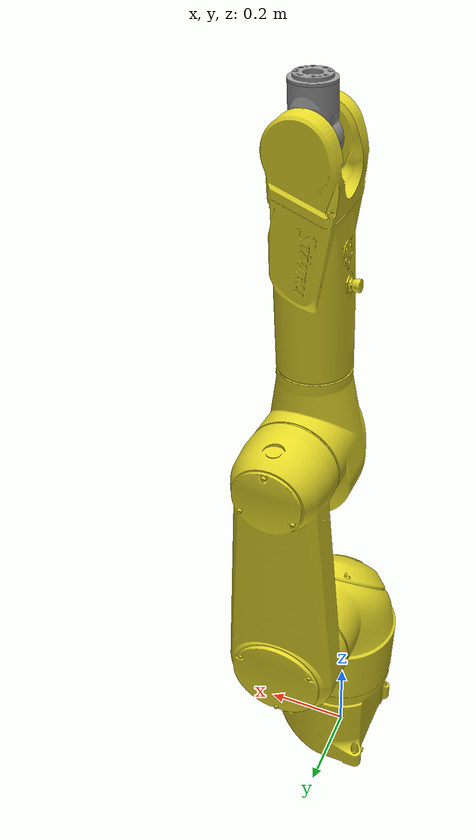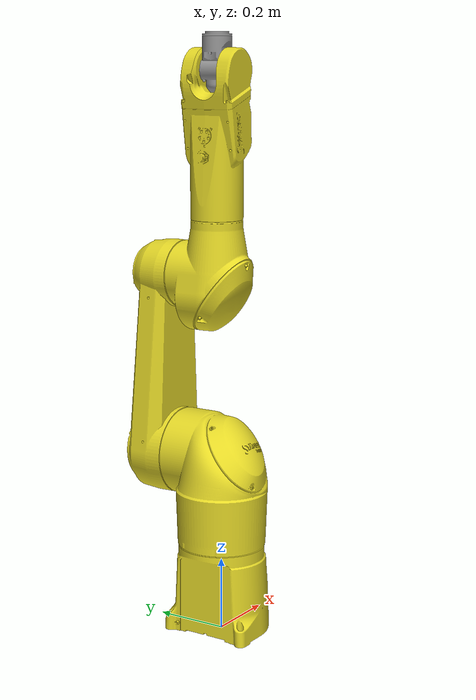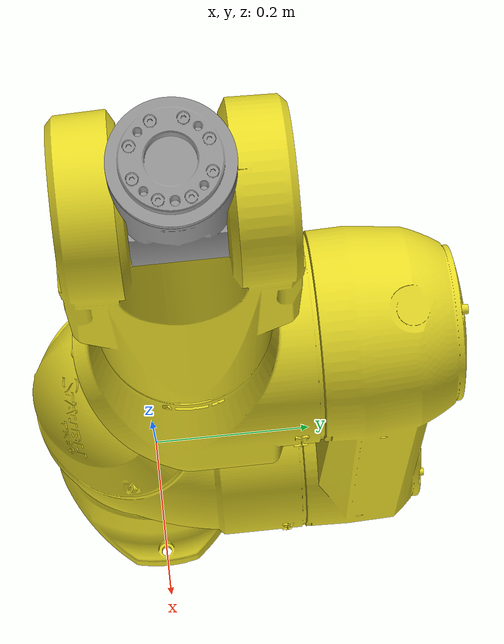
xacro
<?xml version="1.0" ?>
<robot name="staubli_tx90l_gazebo" xmlns:xacro="http://wiki.ros.org/xacro">
  <!-- TX90L -->
  <xacro:include filename="$(find staubli_tx90_gazebo)/urdf/tx90l_macro.xacro"/>

  <xacro:staubli_tx90l_robot prefix=""/>

  <!-- Fix robot to Gazebo world -->
  <link name="world"/>
  <joint name="world-base_link-fixed" type="fixed">
    <parent link="world"/>
    <child link="base_link"/>
    <origin xyz="0.0 0.0 0.0" rpy="0.0 0.0 0.0" />
  </joint>
</robot>

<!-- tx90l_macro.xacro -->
<robot xmlns:xacro="http://wiki.ros.org/xacro">
<xacro:include filename="$(find staubli_tx90_support)/urdf/tx90l_macro.xacro"/>
<xacro:macro name="staubli_tx90l_robot" params="prefix">

  <!-- get URDF description of Staubli TX90L model -->
  <xacro:staubli_tx90l prefix="${prefix}" />

  <!-- transmission list -->
  <transmission name="${prefix}tran1">
    <robotNamespace>/${prefix}</robotNamespace>
    <type>transmission_interface/SimpleTransmission</type>
    <joint name="${prefix}joint_1">
      <hardwareInterface>PositionJointInterface</hardwareInterface>
    </joint>
    <actuator name="${prefix}motor1">
      <mechanicalReduction>1</mechanicalReduction>
    </actuator>
  </transmission>
  <transmission name="${prefix}tran2">
    <robotNamespace>/${prefix}</robotNamespace>
    <type>transmission_interface/SimpleTransmission</type>
    <joint name="${prefix}joint_2">
      <hardwareInterface>PositionJointInterface</hardwareInterface>
    </joint>
    <actuator name="${prefix}motor2">
      <mechanicalReduction>1</mechanicalReduction>
    </actuator>
  </transmission>
  <transmission name="${prefix}tran3">
    <robotNamespace>/${prefix}</robotNamespace>
    <type>transmission_interface/SimpleTransmission</type>
    <joint name="${prefix}joint_3">
      <hardwareInterface>PositionJointInterface</hardwareInterface>
    </joint>
    <actuator name="${prefix}motor3">
      <mechanicalReduction>1</mechanicalReduction>
    </actuator>
  </transmission>
  <transmission name="${prefix}tran4">
    <robotNamespace>/${prefix}</robotNamespace>
    <type>transmission_interface/SimpleTransmission</type>
    <joint name="${prefix}joint_4">
      <hardwareInterface>PositionJointInterface</hardwareInterface>
    </joint>
    <actuator name="${prefix}motor4">
      <mechanicalReduction>1</mechanicalReduction>
    </actuator>
  </transmission>
  <transmission name="${prefix}tran5">
    <robotNamespace>/${prefix}</robotNamespace>
    <type>transmission_interface/SimpleTransmission</type>
    <joint name="${prefix}joint_5">
      <hardwareInterface>PositionJointInterface</hardwareInterface>
    </joint>
    <actuator name="${prefix}motor5">
      <mechanicalReduction>1</mechanicalReduction>
    </actuator>
  </transmission>
  <transmission name="${prefix}tran6">
    <robotNamespace>/${prefix}</robotNamespace>
    <type>transmission_interface/SimpleTransmission</type>
    <joint name="${prefix}joint_6">
      <hardwareInterface>PositionJointInterface</hardwareInterface>
    </joint>
    <actuator name="${prefix}motor6">
      <mechanicalReduction>1</mechanicalReduction>
    </actuator>
  </transmission>
  <!-- end of transmission list -->

  <!-- Gazebo-specific link properties -->
  <gazebo reference="${prefix}base_link">
    <material>Gazebo/Yellow</material>
    <turnGravityOff>true</turnGravityOff>
  </gazebo>
  <gazebo reference="${prefix}link_1">
    <material>Gazebo/Yellow</material>
    <turnGravityOff>true</turnGravityOff>
  </gazebo>
  <gazebo reference="${prefix}link_2">
    <material>Gazebo/Yellow</material>
    <turnGravityOff>true</turnGravityOff>
  </gazebo>
  <gazebo reference="${prefix}link_3">
    <material>Gazebo/Yellow</material>
    <turnGravityOff>true</turnGravityOff>
  </gazebo>
  <gazebo reference="${prefix}link_4">
    <material>Gazebo/Yellow</material>
    <turnGravityOff>true</turnGravityOff>
  </gazebo>
  <gazebo reference="${prefix}link_5">
    <material>Gazebo/Grey</material>
    <turnGravityOff>true</turnGravityOff>
  </gazebo>
  <gazebo reference="${prefix}link_6">
    <material>Gazebo/Grey</material>
    <turnGravityOff>true</turnGravityOff>
  </gazebo>

  <!-- ros_control plugin -->
  <gazebo>
    <plugin name="gazebo_ros_control" filename="libgazebo_ros_control.so">
      <robotNamespace>/${prefix}</robotNamespace>
      <robotSimType>gazebo_ros_control/DefaultRobotHWSim</robotSimType>
    </plugin>
  </gazebo>

  </xacro:macro>
</robot>

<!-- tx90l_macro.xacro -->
<robot xmlns:xacro="http://wiki.ros.org/xacro">
  <xacro:include filename="$(find staubli_resources)/urdf/common_materials.xacro"/>

  <xacro:macro name="staubli_tx90l" params="prefix">
    <!-- links: main serial chain -->
    <link name="${prefix}base_link">
      <visual>
        <origin xyz="0 0 0" rpy="0 0 0"/>
        <geometry>
          <mesh filename="package://staubli_tx90_support/meshes/tx90/visual/base_link.stl"/>
        </geometry>
        <xacro:material_staubli_ral_melon_yellow />
      </visual>
      <collision>
        <origin xyz="0 0 0" rpy="0 0 0"/>
        <geometry>
          <mesh filename="package://staubli_tx90_support/meshes/tx90/collision/base_link.stl"/>
        </geometry>
      </collision>
      <inertial>
          <mass value="10.733459"/>
          <origin xyz="0.014288 0.000001 0.122264" rpy="0.0 0.0 0.0"/>
          <inertia ixx="0.096590" ixy="-0.000005" ixz="-0.003803"
                                  iyy="0.087591"  iyz="-0.000001"
                                                  izz="0.081632"/>
      </inertial>
    </link>
    <link name="${prefix}link_1">
      <visual>
        <origin xyz="0 0 0" rpy="0 0 0"/>
        <geometry>
          <mesh filename="package://staubli_tx90_support/meshes/tx90/visual/link_1.stl"/>
        </geometry>
        <xacro:material_staubli_ral_melon_yellow />
      </visual>
      <collision>
        <origin xyz="0 0 0" rpy="0 0 0"/>
        <geometry>
          <mesh filename="package://staubli_tx90_support/meshes/tx90/collision/link_1.stl"/>
        </geometry>
      </collision>
      <inertial>
          <mass value="16.934564"/>
          <origin xyz="0.019143 0.024764 -0.064596" rpy="0.0 0.0 0.0"/>
          <inertia ixx="0.222318" ixy="0.016499" ixz="0.023794"
                                  iyy="0.208959" iyz="0.031663"
                                                 izz="0.157081"/>
      </inertial>
    </link>
    <link name="${prefix}link_2">
      <visual>
        <origin xyz="0 0 0" rpy="0 0 0"/>
        <geometry>
          <mesh filename="package://staubli_tx90_support/meshes/tx90l/visual/link_2.stl"/>
        </geometry>
        <xacro:material_staubli_ral_melon_yellow />
      </visual>
      <collision>
        <origin xyz="0 0 0" rpy="0 0 0"/>
        <geometry>
          <mesh filename="package://staubli_tx90_support/meshes/tx90l/collision/link_2.stl"/>
        </geometry>
      </collision>
      <inertial>
          <mass value="14.350897"/>
          <origin xyz="-0.000007 0.221192 0.206856" rpy="0.0 0.0 0.0"/>
          <inertia ixx="0.595207" ixy="0.000005" ixz="-0.000008"
                                       iyy="0.625683" iyz="-0.003766"
                                                           izz="0.059863"/>
      </inertial>
    </link>
    <link name="${prefix}link_3">
      <visual>
        <origin xyz="0 0 0" rpy="0 0 0"/>
        <geometry>
          <mesh filename="package://staubli_tx90_support/meshes/tx90/visual/link_3.stl"/>
        </geometry>
        <xacro:material_staubli_ral_melon_yellow />
      </visual>
      <collision>
        <origin xyz="0 0 0" rpy="0 0 0"/>
        <geometry>
          <mesh filename="package://staubli_tx90_support/meshes/tx90/collision/link_3.stl"/>
        </geometry>
      </collision>
      <inertial>
          <mass value="7.501506"/>
          <origin xyz="0.000002 0.065008 -0.071428" rpy="0.0 0.0 0.0"/>
          <inertia ixx="0.058902" ixy="0.000000" ixz="0.000001"
                                  iyy="0.056884" iyz="-0.003672"
                                                 izz="0.034271"/>
      </inertial>
    </link>
    <link name="${prefix}link_4">
      <visual>
        <origin xyz="0 0 0" rpy="0 0 0"/>
        <geometry>
          <mesh filename="package://staubli_tx90_support/meshes/tx90l/visual/link_4.stl"/>
        </geometry>
        <xacro:material_staubli_ral_melon_yellow />
      </visual>
      <collision>
        <origin xyz="0 0 0" rpy="0 0 0"/>
        <geometry>
          <mesh filename="package://staubli_tx90_support/meshes/tx90l/collision/link_4.stl"/>
        </geometry>
      </collision>
      <inertial>
          <mass value="6.420429"/>
          <origin xyz="-0.001998 0.049992 0.360301" rpy="0.0 0.0 0.0"/>
          <inertia ixx="0.103999" ixy="0.000003" ixz="-0.001379"
                                  iyy="0.098782" iyz="-0.000007"
                                                 izz="0.019071"/>
      </inertial>
    </link>
    <link name="${prefix}link_5">
      <visual>
        <origin xyz="0 0 0" rpy="0 0 0"/>
        <geometry>
          <mesh filename="package://staubli_tx90_support/meshes/tx90/visual/link_5.stl"/>
        </geometry>
        <xacro:material_staubli_ral_grey_aluminium />
      </visual>
      <collision>
        <origin xyz="0 0 0" rpy="0 0 0"/>
        <geometry>
          <mesh filename="package://staubli_tx90_support/meshes/tx90/collision/link_5.stl"/>
        </geometry>
      </collision>
      <inertial>
          <mass value="0.568760"/>
          <origin xyz="0.000000 0.049931 0.022823" rpy="0.0 0.0 0.0"/>
          <inertia ixx="0.001084" ixy="0.000000" ixz="0.000000"
                                  iyy="0.001123" iyz="0.000001"
                                                 izz="0.000383"/>
      </inertial>
    </link>
    <link name="${prefix}link_6">
      <visual>
        <origin xyz="0 0 0" rpy="0 0 0"/>
        <geometry>
          <mesh filename="package://staubli_tx90_support/meshes/tx90/visual/link_6.stl"/>
        </geometry>
        <xacro:material_staubli_ral_grey_aluminium />
      </visual>
      <collision>
        <origin xyz="0 0 0" rpy="0 0 0"/>
        <geometry>
          <mesh filename="package://staubli_tx90_support/meshes/tx90/collision/link_6.stl"/>
        </geometry>
      </collision>
      <inertial>
          <mass value="0.030977"/>
          <origin xyz="-0.000243 0.050000 -0.206293" rpy="0.0 0.0 0.0"/>
          <inertia ixx="0.000012" ixy="-0.000000" ixz="0.000000"
                                  iyy="0.000011"  iyz="0.000000"
                                                  izz="0.000022"/>
      </inertial>
    </link>

    <!-- joints: main serial chain -->
    <joint name="${prefix}joint_1" type="revolute">
      <origin xyz="0 0 0.478" rpy="0 0 0"/>
      <parent link="${prefix}base_link"/>
      <child link="${prefix}link_1"/>
      <axis xyz="0 0 1"/>
      <!-- from Staubli instruction manual:
      (1) effort limit = 318 Nm if floor mounted
      (2) effort limit = 111 Nm if wall mounted -->
      <limit lower="${radians(-180)}" upper="${radians(180)}" effort="318.0" velocity="${radians(400)}" />
      <dynamics damping="0.0" friction="0.0"/>
    </joint>
    <joint name="${prefix}joint_2" type="revolute">
      <origin xyz="0.050 0 0" rpy="0 0 0"/>
      <parent link="${prefix}link_1"/>
      <child link="${prefix}link_2"/>
      <axis xyz="0 1 0"/>
      <limit lower="${radians(-130)}" upper="${radians(147.5)}" effort="130.0" velocity="${radians(390)}" />
      <dynamics damping="0.0" friction="0.0"/>
    </joint>
    <joint name="${prefix}joint_3" type="revolute">
      <origin xyz="0 0.05 0.500" rpy="0 0 0"/>
      <parent link="${prefix}link_2"/>
      <child link="${prefix}link_3"/>
      <axis xyz="0 1 0"/>
      <limit lower="${radians(-145)}" upper="${radians(145)}" effort="65.0" velocity="${radians(420)}" />
      <dynamics damping="0.0" friction="0.0"/>
    </joint>
    <joint name="${prefix}joint_4" type="revolute">
      <origin xyz="0 0 0" rpy="0 0 0"/>
      <parent link="${prefix}link_3"/>
      <child link="${prefix}link_4"/>
      <axis xyz="0 0 1"/>
      <limit lower="${radians(-270)}" upper="${radians(270)}" effort="34.0" velocity="${radians(540)}" />
      <dynamics damping="0.0" friction="0.0"/>
    </joint>
    <joint name="${prefix}joint_5" type="revolute">
      <origin xyz="0 0 0.550" rpy="0 0 0"/>
      <parent link="${prefix}link_4"/>
      <child link="${prefix}link_5"/>
      <axis xyz="0 1 0"/>
      <limit lower="${radians(-115)}" upper="${radians(140)}" effort="29.0" velocity="${radians(475)}" />
      <dynamics damping="0.0" friction="0.0"/>
    </joint>
    <joint name="${prefix}joint_6" type="revolute">
      <origin xyz="0 0 0.100" rpy="0 0 0"/>
      <parent link="${prefix}link_5"/>
      <child link="${prefix}link_6"/>
      <axis xyz="0 0 1"/>
      <limit lower="${radians(-270)}" upper="${radians(270)}" effort="11.0" velocity="${radians(760)}" />
      <dynamics damping="0.0" friction="0.0"/>
    </joint>

    <!-- ROS-Industrial 'base' frame: base_link to Staubli World Coordinates transform -->
    <link name="${prefix}base" />
    <joint name="${prefix}base_link-base" type="fixed">
      <origin xyz="0 0 0.478" rpy="0 0 0"/>
      <parent link="${prefix}base_link"/>
      <child link="${prefix}base"/>
    </joint>

    <!-- ROS-Industrial 'flange' frame: attachment point for EEF models -->
    <link name="${prefix}flange" />
    <joint name="${prefix}joint_6-flange" type="fixed">
      <origin xyz="0 0 0" rpy="0 ${radians(-90.0)} 0" />
      <parent link="${prefix}link_6" />
      <child link="${prefix}flange" />
    </joint>

    <!-- ROS-Industrial 'tool0' frame: all-zeros tool frame -->
    <link name="${prefix}tool0" />
    <joint name="${prefix}flange-tool0" type="fixed">
      <origin xyz="0 0 0" rpy="0 ${radians(90.0)} 0" />
      <parent link="${prefix}flange" />
      <child link="${prefix}tool0" />
    </joint>
  </xacro:macro>
</robot>
